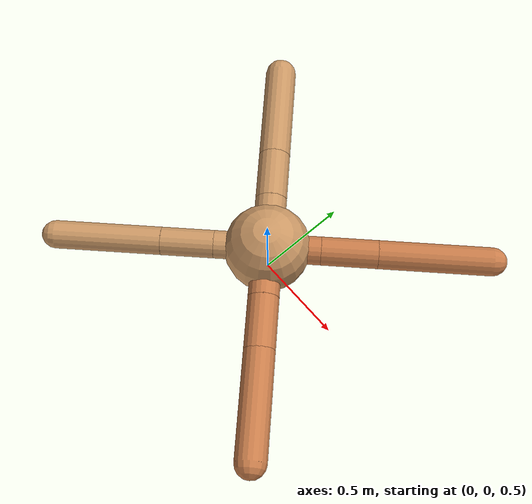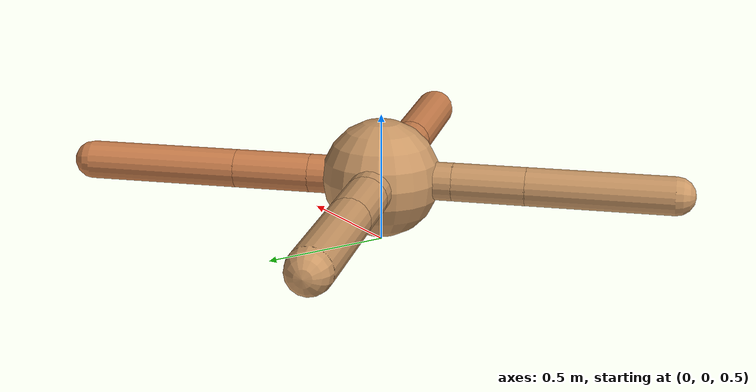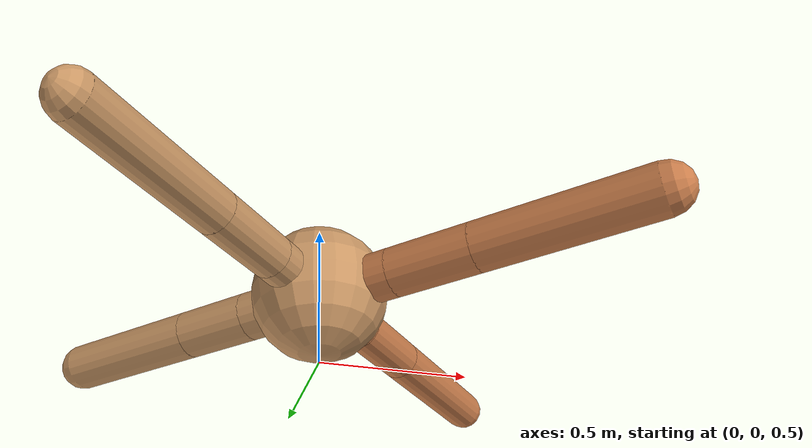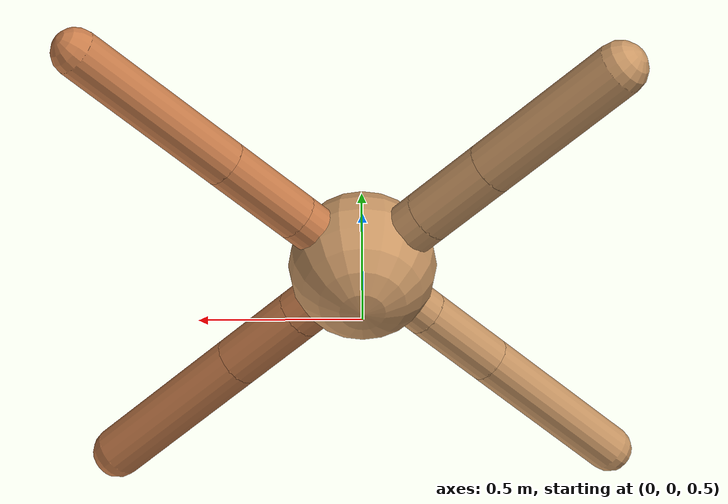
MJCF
<?xml version="1.0" ?>
<mujoco model="ant">

	<compiler angle="degree" coordinate="local" inertiafromgeom="true"/>

	<option integrator="RK4" timestep="0.01"/>

	<custom>

		<numeric data="0.0 0.0 0.55 1.0 0.0 0.0 0.0 0.0 1.0 0.0 -1.0 0.0 -1.0 0.0 1.0" name="init_qpos"/>

	</custom>

	<default>

		<joint armature="1" damping="1" limited="true"/>

		<geom conaffinity="0" condim="3" density="5.0" friction="1.5 0.1 0.1" margin="0.01" rgba="0.8 0.6 0.4 1"/>

	</default>

	<worldbody>

		<body name="torso" pos="0 0 0.75">

			<geom name="torso_geom" pos="0 0 0" size="0.2309738435472612" type="sphere"/>

			<!--joint armature="0" damping="0" limited="false" margin="0.01" name="root" pos="0 0 0" type="free"/-->

			<body name="front_left_leg" pos="0 0 0">

				<geom fromto="0 0 0 0.2 0.2 0" name="aux_1_geom" size="0.07609372485021715" type="capsule" rgba=".8 .5 .3 1"/>

				<body name="aux_1" pos="0.2 0.2 0">

					<joint axis="0 0 1" name="hip_1" pos="0.0 0.0 0.0" range="-40 40" type="hinge"/>

					<geom fromto="0 0 0 0.21318993769281758 0.21318993769281758 0" name="left_leg_geom" size="0.07609372485021715" type="capsule" rgba=".8 .5 .3 1"/>

					<body pos="0.21318993769281758 0.21318993769281758 0" name="front_left_foot">

						<joint axis="-1 1 0" name="ankle_1" pos="0.0 0.0 0.0" range="30 100" type="hinge"/>

						<geom fromto="0 0 0 0.42637987538563515 0.42637987538563515 0" name="left_ankle_geom" size="0.07609372485021715" type="capsule" rgba=".8 .5 .3 1"/>

					</body>

				</body>

			</body>

			<body name="front_right_leg" pos="0 0 0">

				<geom fromto="0 0 0 -0.2 0.2 0" name="aux_2_geom" size="0.08555477379918638" type="capsule"/>

				<body name="aux_2" pos="-0.2 0.2 0">

					<joint axis="0 0 1" name="hip_2" pos="0.0 0.0 0.0" range="-40 40" type="hinge"/>

					<geom fromto="0 0 0 -0.18926052971302149 0.18926052971302149 0" name="right_leg_geom" size="0.08555477379918638" type="capsule"/>

					<body pos="-0.18926052971302149 0.18926052971302149 0" name="front_right_foot">

						<joint axis="1 1 0" name="ankle_2" pos="0.0 0.0 0.0" range="-100 -30" type="hinge"/>

						<geom fromto="0 0 0 -0.37852105942604297 0.37852105942604297 0" name="right_ankle_geom" size="0.08555477379918638" type="capsule"/>

					</body>

				</body>

			</body>

			<body name="left_back_leg" pos="0 0 0">

				<geom fromto="0 0 0 -0.2 -0.2 0" name="aux_3_geom" size="0.07476966877394539" type="capsule"/>

				<body name="aux_3" pos="-0.2 -0.2 0">

					<joint axis="0 0 1" name="hip_3" pos="0.0 0.0 0.0" range="-40 40" type="hinge"/>

					<geom fromto="0 0 0 -0.1990421517044885 -0.1990421517044885 0" name="back_leg_geom" size="0.07476966877394539" type="capsule"/>

					<body pos="-0.1990421517044885 -0.1990421517044885 0" name="left_back_foot">

						<joint axis="-1 1 0" name="ankle_3" pos="0.0 0.0 0.0" range="-100 -30" type="hinge"/>

						<geom fromto="0 0 0 -0.398084303408977 -0.398084303408977 0" name="third_ankle_geom" size="0.07476966877394539" type="capsule"/>

					</body>

				</body>

			</body>

			<body name="right_back_leg" pos="0 0 0">

				<geom fromto="0 0 0 0.2 -0.2 0" name="aux_4_geom" size="0.08294930513579182" type="capsule" rgba=".8 .5 .3 1"/>

				<body name="aux_4" pos="0.2 -0.2 0">

					<joint axis="0 0 1" name="hip_4" pos="0.0 0.0 0.0" range="-40 40" type="hinge"/>

					<geom fromto="0 0 0 0.20016362253460374 -0.20016362253460374 0" name="rightback_leg_geom" size="0.08294930513579182" type="capsule" rgba=".8 .5 .3 1"/>

					<body pos="0.20016362253460374 -0.20016362253460374 0" name="right_back_foot">

						<joint axis="1 1 0" name="ankle_4" pos="0.0 0.0 0.0" range="30 100" type="hinge"/>

						<geom fromto="0 0 0 0.40032724506920747 -0.40032724506920747 0" name="fourth_ankle_geom" size="0.08294930513579182" type="capsule" rgba=".8 .5 .3 1"/>

					</body>

				</body>

			</body>

		</body>

	</worldbody>

	<actuator>

		<motor ctrllimited="true" ctrlrange="-1.0 1.0" joint="hip_4" gear="150"/>

		<motor ctrllimited="true" ctrlrange="-1.0 1.0" joint="ankle_4" gear="150"/>

		<motor ctrllimited="true" ctrlrange="-1.0 1.0" joint="hip_1" gear="150"/>

		<motor ctrllimited="true" ctrlrange="-1.0 1.0" joint="ankle_1" gear="150"/>

		<motor ctrllimited="true" ctrlrange="-1.0 1.0" joint="hip_2" gear="150"/>

		<motor ctrllimited="true" ctrlrange="-1.0 1.0" joint="ankle_2" gear="150"/>

		<motor ctrllimited="true" ctrlrange="-1.0 1.0" joint="hip_3" gear="150"/>

		<motor ctrllimited="true" ctrlrange="-1.0 1.0" joint="ankle_3" gear="150"/>

	</actuator>

</mujoco>
